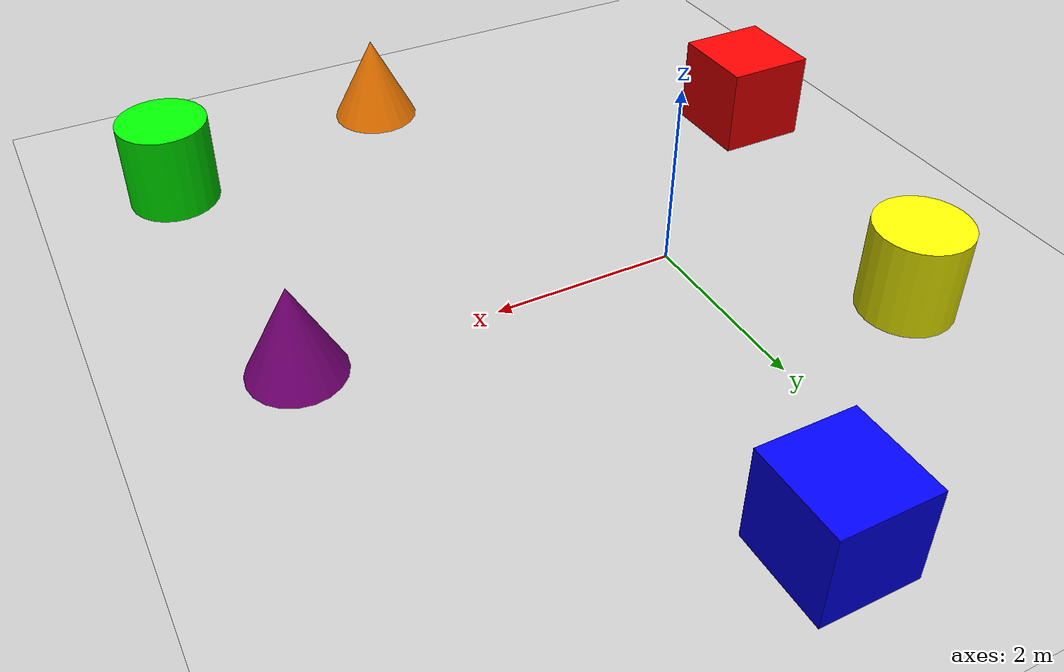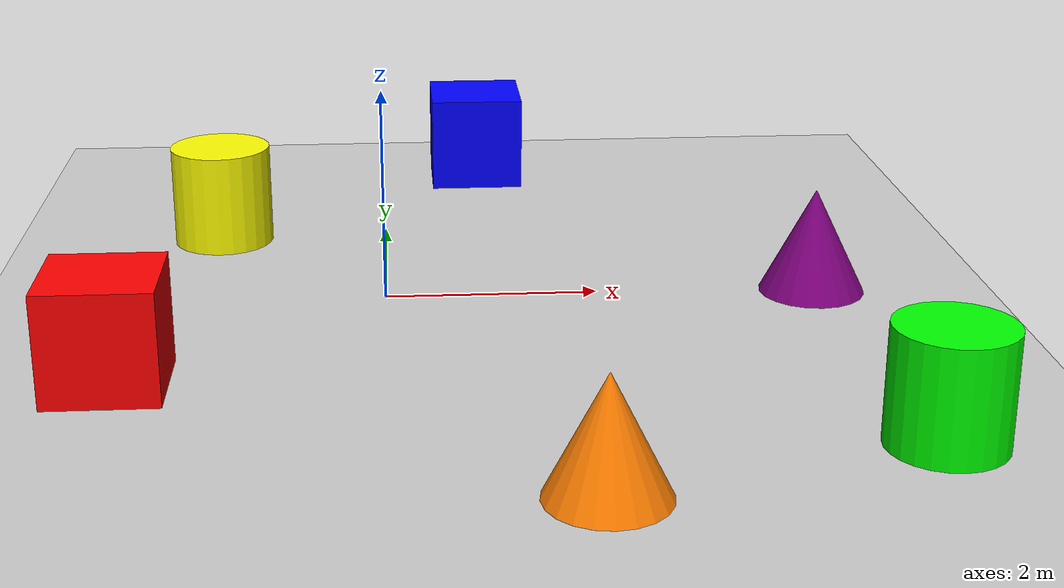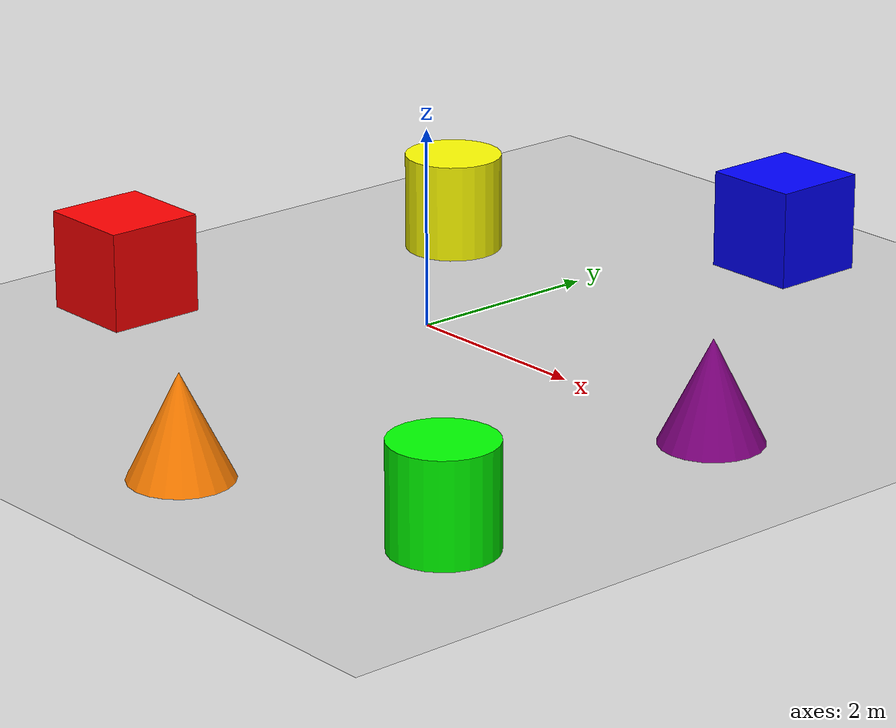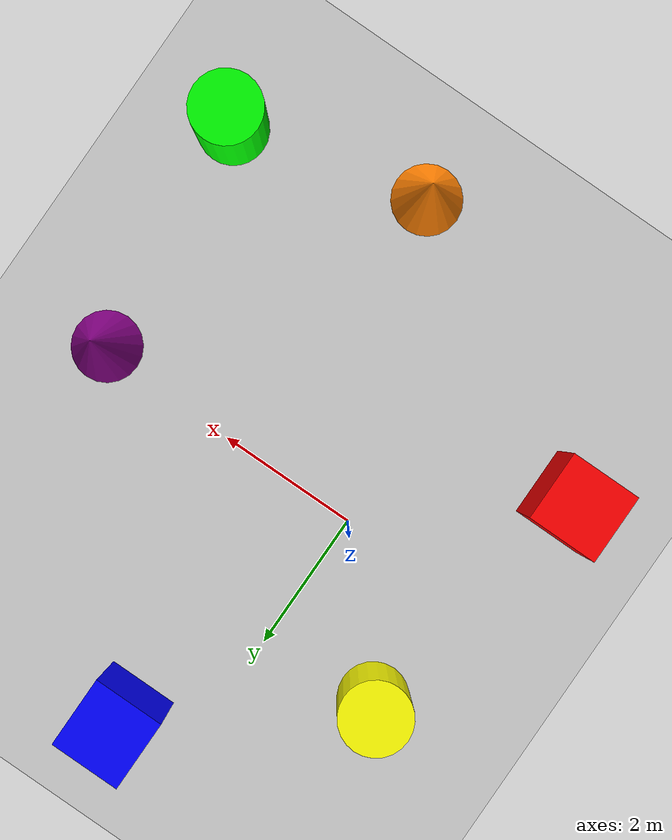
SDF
<sdf version='1.10'>
  <world name='shapes'>
    <physics name='1ms' type='ignored'>
      <max_step_size>0.001</max_step_size>
      <real_time_factor>1</real_time_factor>
      <real_time_update_rate>1000</real_time_update_rate>
    </physics>
    <plugin name='gz::sim::systems::Physics' filename='gz-sim-physics-system'/>
    <plugin name='gz::sim::systems::UserCommands' filename='gz-sim-user-commands-system'/>
    <plugin name='gz::sim::systems::SceneBroadcaster' filename='gz-sim-scene-broadcaster-system'/>
    <plugin name='gz::sim::systems::Contact' filename='gz-sim-contact-system'/>

    <gravity>0 0 -9.8000000000000007</gravity>
    <magnetic_field>5.5644999999999998e-06 2.2875799999999999e-05 -4.2388400000000002e-05</magnetic_field>
    <atmosphere type='adiabatic'/>
    <scene>
      <ambient>0.400000006 0.400000006 0.400000006 1</ambient>
      <background>0.699999988 0.699999988 0.699999988 1</background>
      <shadows>true</shadows>
    </scene>
    <model name='ground_plane'>
      <static>true</static>
      <link name='link'>
        <collision name='collision'>
          <geometry>
            <plane>
              <normal>0 0 1</normal>
              <size>100 100</size>
            </plane>
          </geometry>
          <surface>
            <friction>
              <ode/>
            </friction>
            <bounce/>
            <contact/>
          </surface>
        </collision>
        <visual name='visual'>
          <geometry>
            <plane>
              <normal>0 0 1</normal>
              <size>100 100</size>
            </plane>
          </geometry>
          <material>
            <ambient>0.800000012 0.800000012 0.800000012 1</ambient>
            <diffuse>0.800000012 0.800000012 0.800000012 1</diffuse>
            <specular>0.800000012 0.800000012 0.800000012 1</specular>
          </material>
        </visual>
        <pose>0 0 0 0 0 0</pose>
        <inertial>
          <pose>0 0 0 0 0 0</pose>
          <mass>1</mass>
          <inertia>
            <ixx>1</ixx>
            <ixy>0</ixy>
            <ixz>0</ixz>
            <iyy>1</iyy>
            <iyz>0</iyz>
            <izz>1</izz>
          </inertia>
        </inertial>
        <enable_wind>false</enable_wind>
      </link>
      <pose>0 0 0 0 0 0</pose>
      <self_collide>false</self_collide>
    </model>
    <model name='box'>
      <pose>1.0377045115525867 3.9004301879987389 0.5 0 0 0</pose>
      <link name='box_link'>
        <inertial>
          <inertia>
            <ixx>0.16666</ixx>
            <ixy>0</ixy>
            <ixz>0</ixz>
            <iyy>0.16666</iyy>
            <iyz>0</iyz>
            <izz>0.16666</izz>
          </inertia>
          <mass>1</mass>
          <pose>0 0 0 0 0 0</pose>
        </inertial>
        <collision name='box_collision'>
          <geometry>
            <box>
              <size>1 1 1</size>
            </box>
          </geometry>
          <surface>
            <friction>
              <ode/>
            </friction>
            <bounce/>
            <contact/>
          </surface>
        </collision>
        <visual name='box_visual'>
          <geometry>
            <box>
              <size>1 1 1</size>
            </box>
          </geometry>
          <material>
            <specular>1 1 1 1</specular>
            <ambient>0 0 1 1</ambient>
            <diffuse>0 0 1 1</diffuse>
          </material>
        </visual>
        <pose>0 0 0 0 0 0</pose>
        <enable_wind>false</enable_wind>
      </link>
      <static>false</static>
      <self_collide>false</self_collide>
    </model>
    <model name='cone'>
      <pose>4.0666621272706376 -0.094068951318850624 0.5 0 0 0</pose>
      <link name='cone_link'>
        <inertial>
          <inertia>
            <ixx>0.074999999999999997</ixx>
            <ixy>0</ixy>
            <ixz>0</ixz>
            <iyy>0.074999999999999997</iyy>
            <iyz>0</iyz>
            <izz>0.074999999999999997</izz>
          </inertia>
          <mass>1</mass>
          <pose>0 0 0 0 0 0</pose>
        </inertial>
        <collision name='cone_collision'>
          <geometry>
            <cone>
              <radius>0.5</radius>
              <length>1</length>
            </cone>
          </geometry>
          <surface>
            <friction>
              <ode/>
            </friction>
            <bounce/>
            <contact/>
          </surface>
        </collision>
        <visual name='cone_visual'>
          <geometry>
            <cone>
              <radius>0.5</radius>
              <length>1</length>
            </cone>
          </geometry>
          <material>
            <ambient>0.5 0 0.5 1</ambient>
            <diffuse>0.5 0 0.5 1</diffuse>
            <specular>1 1 1 1</specular>
          </material>
        </visual>
        <pose>0 0 0 0 0 0</pose>
        <enable_wind>false</enable_wind>
      </link>
      <static>false</static>
      <self_collide>false</self_collide>
    </model>
    <model name='cylinder'>
      <pose>-1.6692325052034764 1.7884742700708571 0.5 0 0 0</pose>
      <link name='cylinder_link'>
        <inertial>
          <inertia>
            <ixx>0.14580000000000001</ixx>
            <ixy>0</ixy>
            <ixz>0</ixz>
            <iyy>0.14580000000000001</iyy>
            <iyz>0</iyz>
            <izz>0.125</izz>
          </inertia>
          <mass>1</mass>
          <pose>0 0 0 0 0 0</pose>
        </inertial>
        <collision name='cylinder_collision'>
          <geometry>
            <cylinder>
              <radius>0.5</radius>
              <length>1</length>
            </cylinder>
          </geometry>
          <surface>
            <friction>
              <ode/>
            </friction>
            <bounce/>
            <contact/>
          </surface>
        </collision>
        <visual name='cylinder_visual'>
          <geometry>
            <cylinder>
              <radius>0.5</radius>
              <length>1</length>
            </cylinder>
          </geometry>
          <material>
            <ambient>1 1 0 1</ambient>
            <diffuse>1 1 0 1</diffuse>
            <specular>1 1 1 1</specular>
          </material>
        </visual>
        <pose>0 0 0 0 0 0</pose>
        <enable_wind>false</enable_wind>
      </link>
      <static>false</static>
      <self_collide>false</self_collide>
    </model>
    <model name='cylinder_0'>
      <pose>4.3364658003820473 -3.5245682761037642 0.5 0 0 0</pose>
      <link name='cylinder_link'>
        <inertial>
          <inertia>
            <ixx>0.14580000000000001</ixx>
            <ixy>0</ixy>
            <ixz>0</ixz>
            <iyy>0.14580000000000001</iyy>
            <iyz>0</iyz>
            <izz>0.125</izz>
          </inertia>
          <mass>1</mass>
          <pose>0 0 0 0 0 0</pose>
        </inertial>
        <collision name='cylinder_collision'>
          <geometry>
            <cylinder>
              <radius>0.5</radius>
              <length>1</length>
            </cylinder>
          </geometry>
          <surface>
            <friction>
              <ode/>
            </friction>
            <bounce/>
            <contact/>
          </surface>
        </collision>
        <visual name='cylinder_visual'>
          <geometry>
            <cylinder>
              <radius>0.5</radius>
              <length>1</length>
            </cylinder>
          </geometry>
          <material>
            <ambient>0 1 0 1</ambient>
            <diffuse>0 1 0 1</diffuse>
            <specular>1 1 1 1</specular>
          </material>
        </visual>
        <pose>0 0 0 0 0 0</pose>
        <enable_wind>false</enable_wind>
      </link>
      <static>false</static>
      <self_collide>false</self_collide>
    </model>
    <model name='cone_0'>
      <pose>1.6078087174488669 -4.2343418715596677 0.5 0 0 0</pose>
      <link name='cone_link'>
        <inertial>
          <inertia>
            <ixx>0.074999999999999997</ixx>
            <ixy>0</ixy>
            <ixz>0</ixz>
            <iyy>0.074999999999999997</iyy>
            <iyz>0</iyz>
            <izz>0.074999999999999997</izz>
          </inertia>
          <mass>1</mass>
          <pose>0 0 0 0 0 0</pose>
        </inertial>
        <collision name='cone_collision'>
          <geometry>
            <cone>
              <radius>0.5</radius>
              <length>1</length>
            </cone>
          </geometry>
          <surface>
            <friction>
              <ode/>
            </friction>
            <bounce/>
            <contact/>
          </surface>
        </collision>
        <visual name='cone_visual'>
          <geometry>
            <cone>
              <radius>0.5</radius>
              <length>1</length>
            </cone>
          </geometry>
          <material>
            <ambient>1 0.5 0 1</ambient>
            <diffuse>1 0.5 0 1</diffuse>
            <specular>1 1 1 1</specular>
          </material>
        </visual>
        <pose>0 0 0 0 0 0</pose>
        <enable_wind>false</enable_wind>
      </link>
      <static>false</static>
      <self_collide>false</self_collide>
    </model>
    <model name='box_0'>
      <pose>-2.3206558367124606 -1.9300007637692511 0.5 0 0 0</pose>
      <link name='box_link'>
        <inertial>
          <inertia>
            <ixx>0.16666</ixx>
            <ixy>0</ixy>
            <ixz>0</ixz>
            <iyy>0.16666</iyy>
            <iyz>0</iyz>
            <izz>0.16666</izz>
          </inertia>
          <mass>1</mass>
          <pose>0 0 0 0 0 0</pose>
        </inertial>
        <collision name='box_collision'>
          <geometry>
            <box>
              <size>1 1 1</size>
            </box>
          </geometry>
          <surface>
            <friction>
              <ode/>
            </friction>
            <bounce/>
            <contact/>
          </surface>
        </collision>
        <visual name='box_visual'>
          <geometry>
            <box>
              <size>1 1 1</size>
            </box>
          </geometry>
          <material>
            <ambient>1 0 0 1</ambient>
            <diffuse>1 0 0 1</diffuse>
            <specular>1 1 1 1</specular>
          </material>
        </visual>
        <pose>0 0 0 0 0 0</pose>
        <enable_wind>false</enable_wind>
      </link>
      <static>false</static>
      <self_collide>false</self_collide>
    </model>
    <light name='sun' type='directional'>
      <pose>0 0 10 0 0 0</pose>
      <cast_shadows>true</cast_shadows>
      <intensity>1</intensity>
      <direction>-0.5 0.10000000000000001 -0.90000000000000002</direction>
      <diffuse>0.800000012 0.800000012 0.800000012 1</diffuse>
      <specular>0.200000003 0.200000003 0.200000003 1</specular>
      <attenuation>
        <range>1000</range>
        <linear>0.01</linear>
        <constant>0.90000000000000002</constant>
        <quadratic>0.001</quadratic>
      </attenuation>
      <spot>
        <inner_angle>0</inner_angle>
        <outer_angle>0</outer_angle>
        <falloff>0</falloff>
      </spot>
    </light>
  </world>
</sdf>
